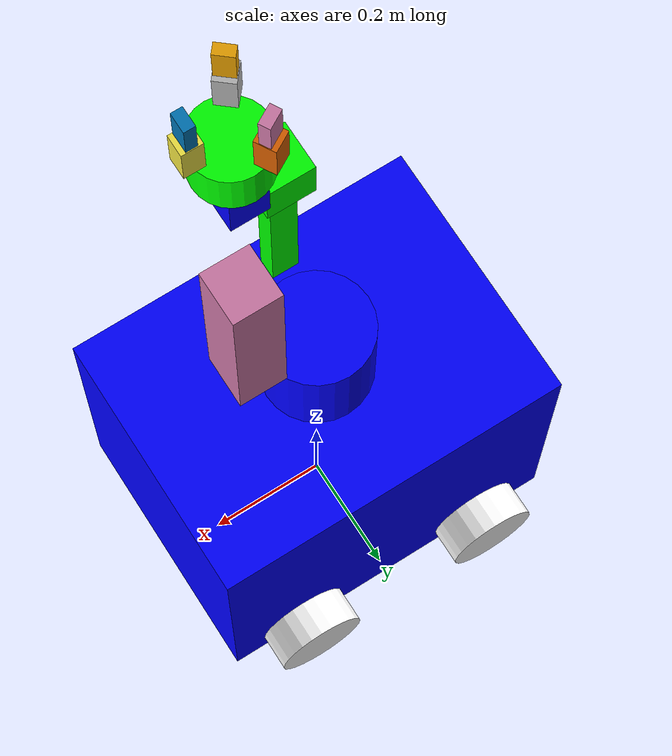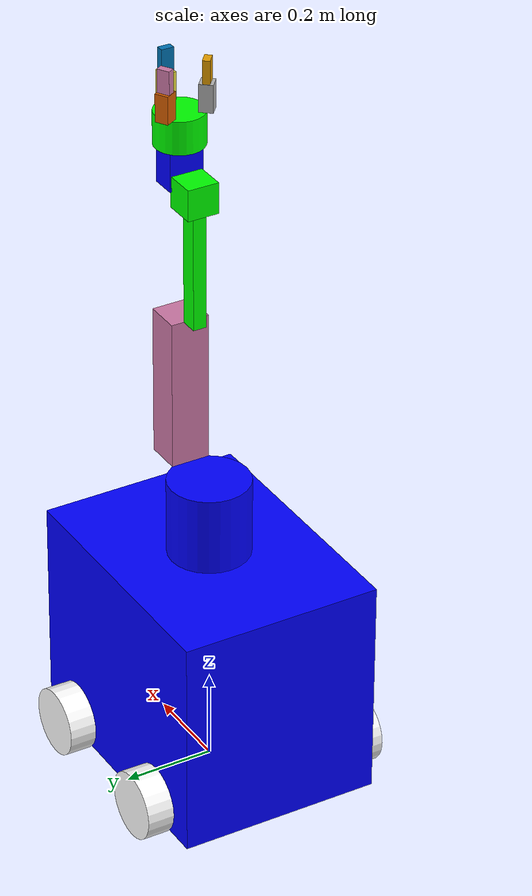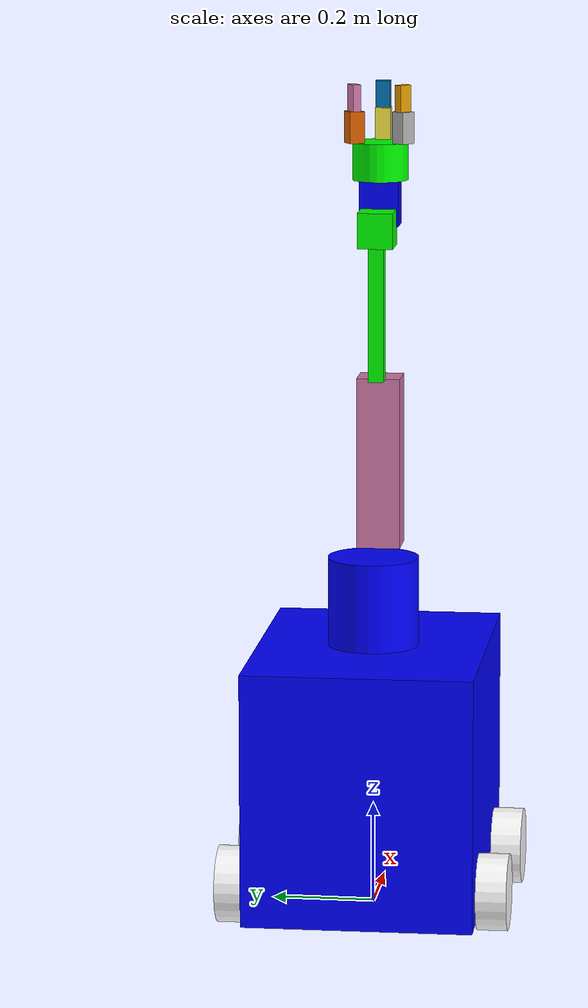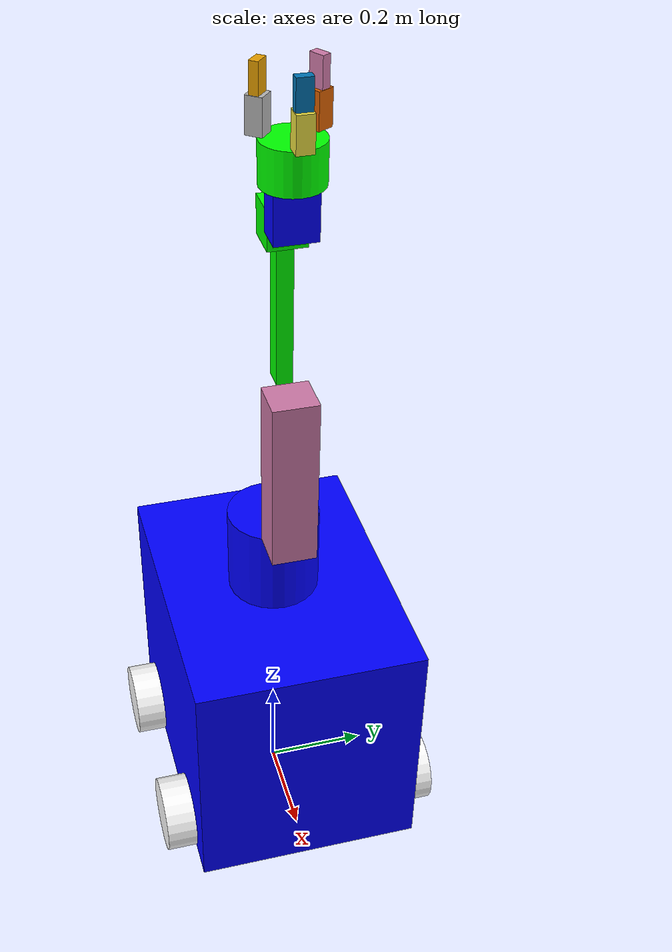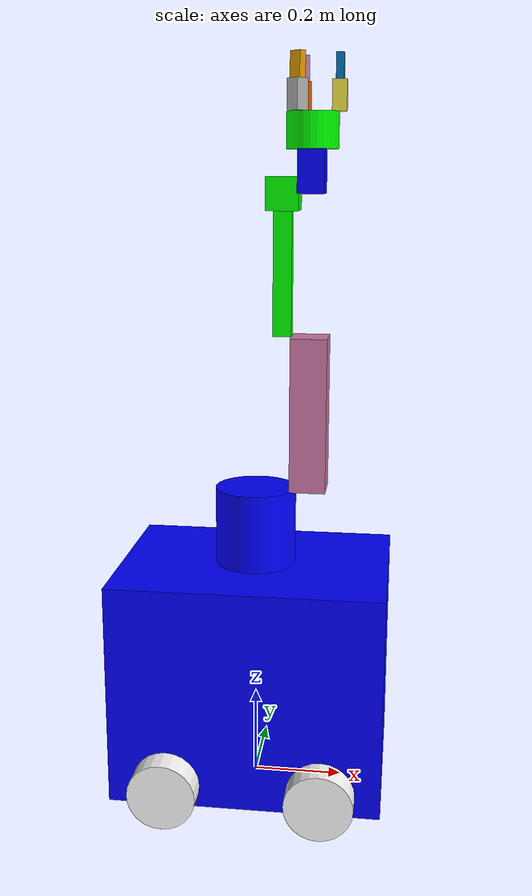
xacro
<?xml version="1.0"?>

<robot name="complete_M.A.R.S_prototype2" xmlns:xacro="http://www.ros.org/wiki/xacro">
<xacro:property name="radius" value="0.075" />
<xacro:property name="length" value="0.06" />

<!--MATERIAL COLORS -->
  <material name="blue">
    <color rgba="0 0 1 1"/>
  </material>

<material name="red">
    <color rgba="1 0 0 1"/>
  </material>

<material name="pink">
    <color rgba="0.8 0 1 0.5"/>
  </material>

    <material name="white">
    <color rgba="1 1 1 1"/>
  </material>

  <material name="green">
    <color rgba="0 1 0 1"/>
</material>

<gazebo reference="base_link_to_wheel1">
  <material>Gazebo/orange</material>
</gazebo>

<!-- Macros for inertia matrix calculations-->
<property name="M_PI" value="3.1415926535897931" />
 <xacro:macro name="sphere_inertial" params="radius mass">
    <inertial>
      <mass value="${mass}" />
      <origin xyz="0 0 0" />
      <inertia ixx="${0.4 * mass * radius * radius}" ixy="0.0" ixz="0.0"
        iyy="${0.4 * mass * radius * radius}" iyz="0.0"
        izz="${0.4 * mass * radius * radius}" />
    </inertial>
  </xacro:macro>

  <xacro:macro name="cylinder_inertial" params="radius length mass">
    <inertial>
      <mass value="${mass}" />
      <origin xyz="0 0 0" />
      <inertia ixx="${0.0833333 * mass * (3 * radius * radius + length * length)}" ixy="0.0" ixz="0.0"
        iyy="${0.0833333 * mass * (3 * radius * radius + length * length)}" iyz="0.0"
        izz="${0.5 * mass * radius * radius}" />
    </inertial>
  </xacro:macro>

    <xacro:macro name="box_inertial" params="x y z mass">
    <inertial>
      <mass value="${mass}" />
      <origin xyz="0 0 0" />
      <inertia ixx="${ 0.0833333 * mass * ( y * y + z * z )}" ixy="0.0" ixz="0.0"
        iyy="${0.0833333 * mass * ( x * x + z * z )}" iyz="0.0"
        izz="${0.0833333 * mass * (x * x + y * y)}" />
    </inertial>
</xacro:macro>

<!-- MOBILE PLATFORM CHASSIS-->
  <link name="base_link">

    <visual>
      <geometry>
        <box size="0.6 0.45 0.50"/>
       </geometry>
      <origin rpy="0 0 0" xyz="0 0 0.275"/>
       <material name="blue"/>
    </visual>

    <collision>
      <geometry>
       <box size="0.6 0.45 0.50"/>

      </geometry>
      <origin rpy="0 0 0" xyz="0 0 0.275"/>
    </collision>

    <inertial>
      <mass value="5.0"/>

      <inertia
          ixx="0.2541" ixy="0" ixz="0"
          iyy="1.1718" iyz="0"
          izz="0.9270"/>
      </inertial>

  </link>

 <joint name="base_link_to_wheel1" type="continuous">
  <axis xyz="0 1 0"/>
<origin rpy="0 0 0" xyz="0.17 0.255 0.075"/>
 <limit effort="100" velocity="100"/>
 <joint_properties damping="0.0" friction="0.0"/>
    <parent link="base_link"/>
    <child link="wheel1"/>

  </joint>
<!--WHEEL_1-->
  <link name="wheel1">
    <visual>
      <geometry>
      <cylinder radius="${radius}" length="${length}"/>

      </geometry>
       <origin rpy="0 1.57075 1.57075" xyz="0 0 0"/>
        <material name="white"/>
    </visual>
     <collision>
     <origin rpy="0 1.57075 1.57075" xyz="0 0 0"/>
      <geometry>
         <cylinder radius="${radius}" length="${length}"/>
      </geometry>
    </collision>
 <inertial>
      <origin xyz="0 0 0" rpy="0 1.5707 1.5707"/>
      <mass value="0.4"/>
      <cylinder_inertia m="0.4" r="0.075" h="0.06"/>
      <inertia
        ixx="0.0006825" ixy="0.0" ixz="0.0"
        iyy="0.0006825" iyz="0.0"
        izz="0.00045"/>
    </inertial>

  </link>

<!--WHEEL_2-->
<link name="wheel2">
    <visual>
      <geometry>
         <cylinder radius="${radius}" length="${length}"/>
      </geometry>
       <origin rpy="0 1.57075 1.57075" xyz="0 0 0"/>
       <material name="white"/>
    </visual>
     <collision>
     <origin rpy="0 1.57075 1.57075" xyz="0 0 0"/>
      <geometry>
         <cylinder radius="${radius}" length="${length}"/>
      </geometry>
    </collision>

    <inertial>
      <origin xyz="0 0 0" rpy="0 1.5707 1.5707"/>
      <mass value="0.4"/>
      <cylinder_inertia m="0.4" r="0.075" h="0.06"/>
      <inertia
        ixx="0.0006825" ixy="0.0" ixz="0.0"
        iyy="0.0006825" iyz="0.0"
        izz="0.00045"/>
    </inertial>
  </link>

<joint name="base_link_to_wheel2" type="continuous">
    <parent link="base_link"/>
    <child link="wheel2"/>
    <origin rpy="0 0 0" xyz="-0.17 0.255 0.075"/>
    <limit effort="100" velocity="100"/>
    <joint_properties damping="0.0" friction="0.0"/>
    <axis xyz="0 1 0"/>

  </joint>
<!--WHEEL_3-->
<link name="wheel3">
    <visual>
      <geometry>
         <cylinder radius="${radius}" length="${length}"/>
      </geometry>
       <origin rpy="0 1.57075 1.57075" xyz="0 0 0"/>
          <material name="white"/>
    </visual>
    <collision>
    <origin rpy="0 1.57075 1.57075" xyz="0 0 0"/>
      <geometry>
        <cylinder radius="${radius}" length="${length}"/>
      </geometry>
    </collision>
    <inertial>
      <origin xyz="0 0 0" rpy="0 1.5707 1.5707"/>
      <mass value="0.4"/>
      <cylinder_inertia m="0.4" r="0.075" h="0.06"/>
      <inertia
        ixx="0.0006825" ixy="0.0" ixz="0.0"
        iyy="0.0006825" iyz="0.0"
        izz="0.00045"/>
    </inertial>
  </link>

    <joint name="base_link_to_wheel3" type="continuous">
    <parent link="base_link"/>
    <child link="wheel3"/>
    <axis xyz="0 1 0"/>
    <limit effort="100" velocity="100"/>
    <joint_properties damping="0.0" friction="0.0"/>
   <origin  xyz="0.17 -0.255 0.075"/>

  </joint>
<!--WHEEL_4-->
<link name="wheel4">
    <visual>
      <geometry>
        <cylinder radius="${radius}" length="${length}"/>
      </geometry>
       <origin rpy="0 1.57075 1.57075" xyz="0 0 0"/>
      <material name="white"/>
    </visual>
<collision>
<origin rpy="0 1.57075 1.57075" xyz="0 0 0"/>
      <geometry>
         <cylinder radius="${radius}" length="${length}"/>
      </geometry>
    </collision>
    <inertial>
      <origin xyz="0 0 0" rpy="0 1.5707 1.5707"/>
      <mass value="0.4"/>
      <cylinder_inertia m="0.4" r="0.075" h="0.06"/>
      <inertia
        ixx="0.0006825" ixy="0.0" ixz="0.0"
        iyy="0.0006825" iyz="0.0"
        izz="0.00045"/>
    </inertial>
  </link>

    <joint name="base_link_to_wheel4" type="continuous">
    <parent link="base_link"/>
    <child link="wheel4"/>
    <limit effort="100" velocity="100"/>
    <joint_properties damping="0.0" friction="0.0"/>
    <axis xyz="0 1 0"/>
    <origin  xyz="-0.17 -0.255 0.075"/>

  </joint>

<!-- MANIPULATOR-->
<!-- BASE CYLINDER -->
<link name="base_cylinder">
    <visual>
    <geometry>
    <cylinder length="0.20" radius="0.09"/>
    </geometry>
    <origin rpy="0 0 0" xyz="0 0 0.10"/>
    <material name="blue"/>
    </visual>

    <collision>
    <geometry>
    <cylinder length="0.21" radius="0.10"/>
    </geometry>
    <origin rpy="0 0 0" xyz="0 0 0.10"/>
    </collision>

    <!-- PHYSICAL PROPERTIES -->
    <xacro:cylinder_inertial mass="3" length="0.20" radius="0.09"/>
</link>

    <joint name="manipulator_to_base_link" type="revolute">
    <parent link="base_link"/>
    <child link="base_cylinder"/>
    <origin rpy="0 0 0" xyz="0 0 0.5"/>
    <axis xyz="0 0 1"/>
    <limit effort="30" velocity="1" lower="-3.14" upper="3.14"/>
    <dynamics damping="50" friction="1"/>
    </joint>
<!-- LINK 2 -->
<link name="link_2">
    <visual>
        <geometry>
        <box size="0.34 0.086 0.0795"/>
        </geometry>
        <origin rpy="0 1.57075 0" xyz="0.028 0 0.17"/>
    </visual>

    <collision>
        <geometry>
        <box size="0.35 0.086 0.0795"/>
        </geometry>
        <origin rpy="0 1.57075 0" xyz="0.028 0 0.17"/>
    </collision>

    <!-- PHYSICAL PROPERTIES -->

    <inertial>
    <mass value="3"/>
    <inertia ixx="0.030749" ixy="0.0" ixz="0.0" iyy="0.0304800625" iyz="0.0" izz="0.0034290625"/>
    <origin rpy="0 0 0" xyz="0 0 0.17"/>
    </inertial>

</link>

    <joint name="base_cylinder_to_link2" type="revolute">
    <parent link="base_cylinder"/>
    <child link="link_2"/>
    <origin rpy="0 0 0" xyz="0.09 0 0.20"/>
    <axis xyz="1 0 0"/>
    <limit effort="25" velocity="0.2094" lower="-1.57" upper="1.57"/>
    <dynamics damping="50" friction="1"/>
    </joint>
<!-- LINK 3 -->
<link name="link_3">
    <visual>
        <geometry>
        <box size="0.265 0.03 0.04"/>
        </geometry>
        <origin rpy="0 1.57075 0" xyz="-0.032 0 0.1325"/>
        <material name="green"/>
    </visual>

    <collision>
        <geometry>
        <box size="0.275 0.03 0.074"/>
        </geometry>
        <origin rpy="0 1.57075 0" xyz="-0.032 0 0.1325"/>
    </collision>

    <!-- PHYSICAL PROPERTIES -->

    <inertial>
    <mass value="0.744"/>
    <inertia ixx="0.02628501" ixy="0.0" ixz="0.0" iyy="0.03097518" iyz="0.0" izz="0.00646982"/>
    <origin rpy="0 1.57075 0" xyz="0 0 0"/>
    </inertial>

</link>

    <joint name="link_2_to_link_3" type="revolute">
    <parent link="link_2"/>
    <child link="link_3"/>
    <origin rpy="0 0 0" xyz="0 0 0.34"/>
    <axis xyz="1 0 0"/>
    <limit effort="15" velocity="5.2359" lower="-1.57" upper="1.57"/>
    <dynamics damping="50" friction="1"/>
    </joint>

<!-- MOTOR NO 4 -->
    <link name="motor_4">
    <visual>
        <geometry>
        <box size="0.07 0.07 0.07"/>
        </geometry>
        <origin rpy="0 0 0" xyz="-0.032 0 0"/>
        <material name="green"/>
    </visual>

    <collision>
        <geometry>
        <box size="0.08 0.08 0.08"/>
        </geometry>
        <origin rpy="0 1.57075 0" xyz="-0.032 0 0"/>
    </collision>

    <inertial>
    <mass value="0.120"/>
    <inertia ixx="0.0005096" ixy="0.0" ixz="0.0" iyy="0.0005096" iyz="0.0" izz="0.0005096"/>
    </inertial>
    </link>

    <joint name="motor_4_to_link_3" type="fixed">
    <parent link="link_3"/>
    <child link="motor_4"/>
    <origin rpy="0 0 0" xyz="0 0 0.30"/>
    </joint>

<!-- LINK 4 -->
<link name="link_4">
    <visual>
        <geometry>
        <box size="0.09 0.0763 0.056"/>
        </geometry>
        <origin rpy="0 1.57075 0" xyz="0.028 0 0.045"/>
        <material name="blue"/>
    </visual>

    <collision>
        <geometry>
        <box size="0.10 0.0863 0.066"/>
        </geometry>
        <origin rpy="0 1.57075 0" xyz="0.028 0 0.045"/>
    </collision>

    <!-- PHYSICAL PROPERTIES -->

    <inertial>
    <mass value="0.674"/>
    <inertia ixx="0.00050312" ixy="0.0" ixz="0.0" iyy="0.00063108" iyz="0.0" izz="0.00078193"/>
    <origin rpy="0 1.57075 0" xyz="0.028 0 0.045"/>
    </inertial>

</link>

    <joint name="link_3_to_link_4" type="revolute">
    <parent link="motor_4"/>
    <child link="link_4"/>
    <origin rpy="0 0 0" xyz="0 0 0"/>
    <axis xyz="1 0 0"/>
    <limit effort="5" velocity="3.14" lower="-1.57" upper="1.57"/>
    <dynamics damping="50" friction="1"/>
    </joint>
<!-- GRIPPER BASE -->
<link name="gripper_base">
    <visual>
    <geometry>
    <cylinder length="0.07425" radius="0.055"/>
    </geometry>
    <origin rpy="0 0 0" xyz="0 0 0.037125"/>
    <material name="green"/>
    </visual>

    <collision>
    <geometry>
    <cylinder length="0.07425" radius="0.055"/>
    </geometry>
    <origin rpy="0 0 0" xyz="0 0 0.037125"/>
    </collision>

    <!-- PHYSICAL PROPERTIES -->

    <xacro:cylinder_inertial radius="0.055" length="0.07425" mass="0.3"/>

</link>

    <joint name="link_4_to_gripper_base" type="revolute">
    <parent link="link_4"/>
    <child link="gripper_base"/>
    <origin rpy="0 0 0" xyz="0.028 0 0.09"/>
    <axis xyz="0 0 1"/>
    <limit effort="5" velocity="3.14" lower="-3.14" upper="3.14"/>
    <dynamics damping="50" friction="1"/>
    </joint>
<link name="finger_base1">
    <visual>
        <geometry>
        <box size="0.062 0.03 0.03"/>
        </geometry>
        <origin rpy="0 1.57075 0" xyz="0 0 0.031"/>
    </visual>

    <collision>
        <geometry>
        <box size="0.062 0.03 0.03"/>
        </geometry>
        <origin rpy="0 1.57075 0" xyz="0 0 0.031"/>
    </collision>

    <!-- PHYSICAL PROPERTIES -->

    <inertial>
    <mass value="0.025"/>
    <inertia ixx="9.8833333e-06" ixy="0.0" ixz="0.0" iyy="9.88333333333e-06" iyz="0.0" izz="3.75e-06"/>
    <origin rpy="0 0 0" xyz="0 0 0.031"/>
    </inertial>

</link>

    <joint name="gripper_base_to_finger_base1" type="revolute">
    <parent link="gripper_base"/>
    <child link="finger_base1"/>
    <origin rpy="0 0 0" xyz="0.055 0 0.07425"/>
    <axis xyz="0 1 0"/>
    <limit effort="30" velocity="1" lower="-0.0349066" upper="0.750492"/>
    <dynamics damping="50" friction="1"/>
    </joint>

<link name="finger_top1">
    <visual>
        <geometry>
        <box size="0.052 0.028 0.016"/>
        </geometry>
        <origin rpy="0 1.57075 0" xyz="0 0 0.026"/>
    </visual>

    <collision>
        <geometry>
        <box size="0.052 0.028 0.016"/>
        </geometry>
        <origin rpy="0 1.57075 0" xyz="0 0 0.026"/>
    </collision>

    <!-- PHYSICAL PROPERTIES -->

    <inertial>
    <mass value="0.025"/>
    <inertia ixx="7.26666666667e-06" ixy="0.0" ixz="0.0" iyy="6.16666666667e-06" iyz="0.0" izz="2.16666666667e-06"/>
    <origin rpy="0 0 0" xyz="0 0 0.026"/>
    </inertial>
</link>

    <joint name="finger_base1_to_finger_top1" type="revolute">
    <parent link="finger_base1"/>
    <child link="finger_top1"/>
    <origin rpy="0 0 0" xyz="0 0 0.062"/>
    <axis xyz="0 1 0"/>
    <limit effort="30" velocity="1" lower="-0.785398" upper="0"/>
    <dynamics damping="50" friction="1"/>
    </joint>
<link name="finger_base2">
    <visual>
        <geometry>
        <box size="0.062 0.03 0.03"/>
        </geometry>
        <origin rpy="0 1.57075 0" xyz="0 0 0.031"/>
    </visual>

    <collision>
        <geometry>
        <box size="0.062 0.03 0.03"/>
        </geometry>
        <origin rpy="0 1.57075 0" xyz="0 0 0.031"/>
    </collision>

    <!-- PHYSICAL PROPERTIES -->

  <inertial>
    <mass value="0.025"/>
    <inertia ixx="9.88333333333e-06" ixy="0.0" ixz="0.0" iyy="9.88333333333e-06" iyz="0.0" izz="3.75e-06"/>
    <origin rpy="0 0 0" xyz="0 0 0.031"/>
    </inertial>
</link>

    <joint name="gripper_base_to_finger_base2" type="revolute">
    <parent link="gripper_base"/>
    <child link="finger_base2"/>
    <origin rpy="0 0 2.0944" xyz=" -0.0275 0.047631 0.07425"/>
    <axis xyz="0 1 0"/>
    <limit effort="30" velocity="1" lower="-0.0349066" upper="0.750492"/>
    <dynamics damping="50" friction="1"/>
    </joint>

<link name="finger_top2">
    <visual>
        <geometry>
        <box size="0.052 0.028 0.016"/>
        </geometry>
        <origin rpy="0 1.57075 0" xyz="0 0 0.026"/>
    </visual>

    <collision>
        <geometry>
        <box size="0.052 0.028 0.016"/>
        </geometry>
        <origin rpy="0 1.57075 0" xyz="0 0 0.026"/>
    </collision>

    <!-- PHYSICAL PROPERTIES -->

   <inertial>
    <mass value="0.025"/>
    <inertia ixx="7.26666666667e-06" ixy="0.0" ixz="0.0" iyy="6.16666666667e-06" iyz="0.0" izz="2.16666666667e-06"/>
    <origin rpy="0 0 0" xyz="0 0 0.026"/>
    </inertial>
</link>

    <joint name="finger_base2_to_finger_top2" type="revolute">
    <parent link="finger_base2"/>
    <child link="finger_top2"/>
    <origin rpy="0 0 0" xyz="0 0 0.062"/>
    <axis xyz="0 1 0"/>
    <limit effort="30" velocity="1" lower="0" upper="-0.785398"/>
    <dynamics damping="50" friction="1"/>
    </joint>
<link name="finger_base3">
    <visual>
        <geometry>
        <box size="0.062 0.03 0.03"/>
        </geometry>
        <origin rpy="0 1.57075 0" xyz="0 0 0.031"/>
    </visual>

    <collision>
        <geometry>
        <box size="0.062 0.03 0.03"/>
        </geometry>
        <origin rpy="0 1.57075 0" xyz="0 0 0.031"/>
    </collision>

    <!-- PHYSICAL PROPERTIES -->

  <inertial>
    <mass value="0.025"/>
    <inertia ixx="9.88333333333e-06" ixy="0.0" ixz="0.0" iyy="9.88333333333e-06" iyz="0.0" izz="3.75e-06"/>
    <origin rpy="0 0 0" xyz="0 0 0.031"/>
    </inertial>
</link>

    <joint name="gripper_base_to_finger_base3" type="revolute">
    <parent link="gripper_base"/>
    <child link="finger_base3"/>
    <origin rpy="0 0 0.872665" xyz=" -0.0275 -0.047631 0.07425"/>
    <axis xyz="0 1 0"/>
    <limit effort="30" velocity="1" lower="-0.0349066" upper="0.750492"/>
    <dynamics damping="50" friction="1"/>
    </joint>

<link name="finger_top3">
    <visual>
        <geometry>
        <box size="0.052 0.028 0.016"/>
        </geometry>
        <origin rpy="0 1.57075 0" xyz="0 0 0.026"/>
    </visual>

    <collision>
        <geometry>
        <box size="0.052 0.028 0.016"/>
        </geometry>
        <origin rpy="0 1.57075 0" xyz="0 0 0.026"/>
    </collision>

    <!-- PHYSICAL PROPERTIES -->

   <inertial>
    <mass value="0.025"/>
    <inertia ixx="7.26666666667e-06" ixy="0.0" ixz="0.0" iyy="6.16666666667e-06" iyz="0.0" izz="2.16666666667e-06"/>
    <origin rpy="0 0 0" xyz="0 0 0.026"/>
    </inertial>
</link>

    <joint name="finger_base3_to_finger_top3" type="revolute">
    <parent link="finger_base3"/>
    <child link="finger_top3"/>
    <origin rpy="0 0 0" xyz="0 0 0.062"/>
    <axis xyz="0 1 0"/>
    <limit effort="30" velocity="1" lower="0" upper="0.785398"/>
    <dynamics damping="50" friction="1"/>
    </joint>
</robot>
